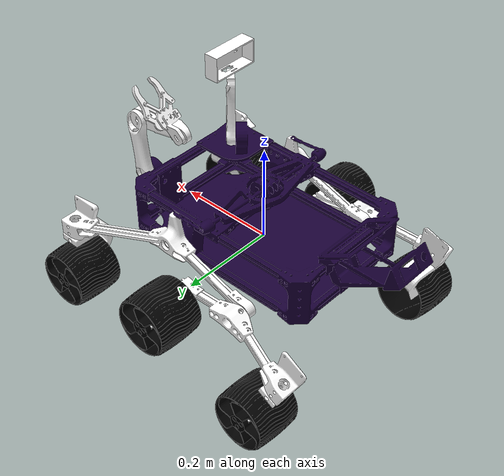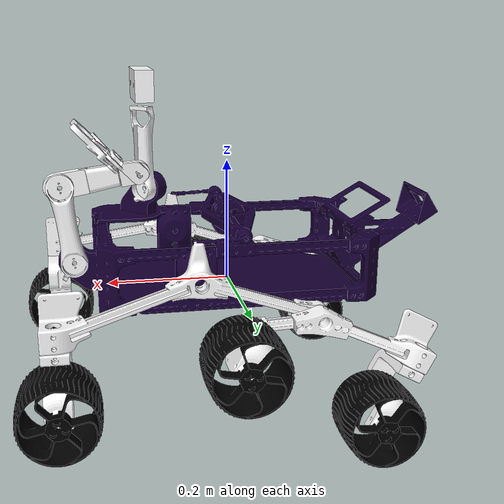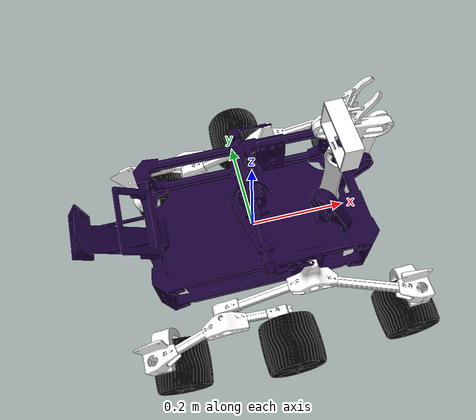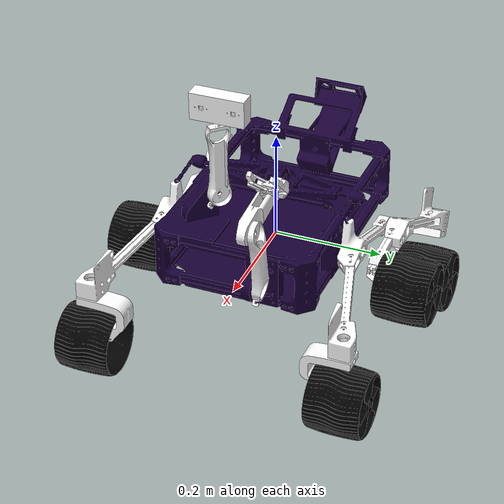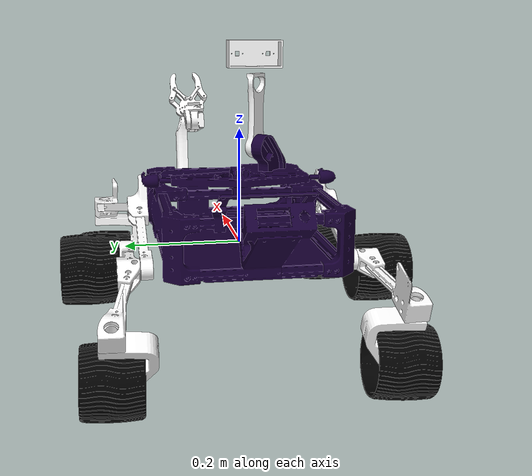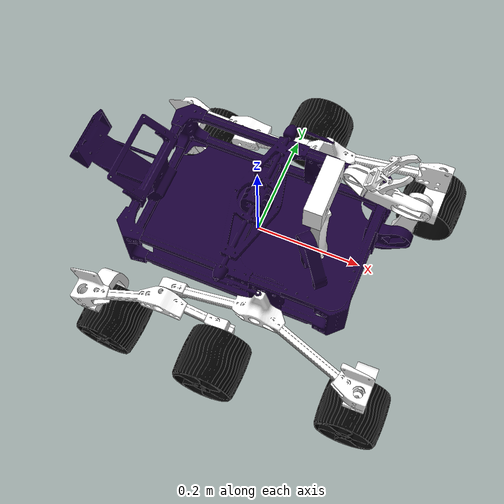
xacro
<?xml version="1.0"?>
<robot name="new_spirit_mars_rover" xmlns:xacro="http://www.ros.org/wiki/xacro">

    <!-- Inertia matrices -->
        <xacro:include filename="$(find new_spirit_mars)/urdf/macros.xacro" />
        <!-- Robot constants and properties -->
        <xacro:include filename="$(find new_spirit_mars)/urdf/new_spirit_mars_rover_properties.xacro" />
        <!-- Gazebo aspects of the robot -->
        <!--xacro:include filename="$(find new_spirit_mars)/urdf/curiosity_mars_rover.gazebo" -->
        <!-- Chasis -->
        <xacro:include filename="$(find new_spirit_mars)/urdf/chassis.xacro" />
        <!-- Wheel Groups -->
        <!--xacro:include filename="$(find new_spirit_mars)/urdf/wheel.xacro" -->
        <xacro:include filename="$(find new_spirit_mars)/urdf/left_wheel_group.xacro" />
        <xacro:include filename="$(find new_spirit_mars)/urdf/bogie_left.xacro" />

        <xacro:include filename="$(find new_spirit_mars)/urdf/right_wheel_group.xacro" />
        <xacro:include filename="$(find new_spirit_mars)/urdf/bogie_right.xacro" />
        <!-- Arm -->
        <xacro:include filename="$(find new_spirit_mars)/urdf/arm.xacro" />
        <!-- Sensor Mast -->
        <xacro:include filename="$(find new_spirit_mars)/urdf/mast.xacro" />

        <chassis_body/>
        <left_wheel_tree/>
        <bogie_left/>
        <right_wheel_tree/>
        <bogie_right/>
        <arm/>
        <mast/>

</robot>

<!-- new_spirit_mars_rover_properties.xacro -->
<robot xmlns:xacro="http://www.ros.org/wiki/xacro">

	<!-- Constants -->
	<xacro:property name="PI" value="3.1415926535897931"/>

	<!-- Scaling -->
	<xacro:property name="scale_XYZ" value="1.0"/>

	<!-- Chassis properties -->

	<!-- Wheel Trees -->

        <xacro:property name="suspension_arm_F_L_limit_upper" value="0.1"/>
        <xacro:property name="suspension_arm_F_L_limit_lower" value="-0.3"/>
        <xacro:property name="suspension_arm_B_L_limit_lower" value="-1.0"/>
        <xacro:property name="suspension_arm_B_L_limit_upper" value="1.0"/>

	<xacro:property name="suspension_arm_B2_lower_limit" value="-1.2"/>
	<xacro:property name="suspension_arm_B2_upper_limit" value="0.1"/>

	<xacro:property name="suspension_steer_limit" value="0.6"/>
	<xacro:property name="suspension_steer_effort" value="10000.0"/>
	<xacro:property name="suspension_steer_velocity" value="10.0"/>

	<xacro:property name="suspension_effort" value="10000.0"/>
	<xacro:property name="suspension_speed" value="10.0"/>
	<xacro:property name="suspension_damping" value="0.5"/>
	<xacro:property name="suspension_friction" value="0.5"/>

	<!-- Wheels properties -->
	<xacro:property name="wheelWidth" value="0.39473"/>
	<xacro:property name="wheelRadius" value="0.242647"/>
	<xacro:property name="wheelMass" value="2.07"/>

	<!-- Arm -->

	<xacro:property name="arm_01_limit" value="1.57"/>
	<xacro:property name="arm_02_limit" value="1.57"/>
	<xacro:property name="arm_03_limit" value="1.57"/>
	<xacro:property name="arm_04_limit" value="1.57"/>

	<!-- Mast -->

	<xacro:property name="mast_p_upper_limit" value="1.57"/>
	<xacro:property name="mast_p_lower_limit" value="0.0"/>

	<xacro:property name="mast_cameras_limit" value="1.57"/>

</robot>

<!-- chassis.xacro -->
<robot xmlns:xacro="http://www.ros.org/wiki/xacro">

  <xacro:macro name="chassis_body" params="">
  <link
    name="RoverChassis">
    <inertial>
      <origin
        xyz="0.0093614 -9.9176E-05 0.050783"
        rpy="0 0 0" />
      <mass
        value="2.5513" />
      <inertia
        ixx="0.0059302"
        ixy="-2.3769E-06"
        ixz="8.4014E-05"
        iyy="0.013"
        iyz="-1.4168E-05"
        izz="0.017599" />
    </inertial>
    <visual>
      <origin
        xyz="0 0 0"
        rpy="0 0 0" />
      <geometry>
        <mesh
          filename="package://new_spirit_mars/meshes/RoverChassis.STL" />
      </geometry>
      <material
        name="">
        <color
          rgba="0.094118 0 0.20784 1" />
      </material>
    </visual>
    <collision>
      <origin
        xyz="0 0 0"
        rpy="0 0 0" />
      <geometry>
        <mesh
          filename="package://new_spirit_mars/meshes/RoverChassis.STL" />
      </geometry>
    </collision>
  </link>
  </xacro:macro>

</robot>

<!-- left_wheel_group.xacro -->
<robot xmlns:xacro="http://www.ros.org/wiki/xacro">

  <xacro:macro name="left_wheel_tree" params="">
  <link
    name="RockerL">
    <inertial>
      <origin
        xyz="-0.0500363133009319 -0.0236635466770382 0.0367831875501886"
        rpy="0 0 0" />
      <mass
        value="0.294520052634494" />
      <inertia
        ixx="0.000108352308811494"
        ixy="-1.91059786594333E-06"
        ixz="4.73945831645257E-05"
        iyy="0.000352090572486351"
        iyz="2.00925754836304E-05"
        izz="0.000386214589117905" />
    </inertial>
    <visual>
      <origin
        xyz="0 0 0"
        rpy="0 0 0" />
      <geometry>
        <mesh
          filename="package://new_spirit_mars/meshesL/RockerL.STL" />
      </geometry>
      <material
        name="">
        <color
          rgba="1 1 1 1" />
      </material>
    </visual>
    <collision>
      <origin
        xyz="0 0 0"
        rpy="0 0 0" />
      <geometry>
        <mesh
          filename="package://new_spirit_mars/meshesL/RockerL.STL" />
      </geometry>
    </collision>
  </link>
  <joint
    name="Chassis_RockerL"
    type="revolute">
    <origin
    xyz="0.073 0.1572 0.0527"
    rpy="1.5708 0 -3.1416"
     />
    <parent
      link="RoverChassis" />
    <child
      link="RockerL" />
    <axis
      xyz="0 0 -1" />
      <limit lower="${suspension_arm_F_L_limit_lower}" upper="${suspension_arm_F_L_limit_upper}" effort="${suspension_effort}" velocity="${suspension_speed}"/>
      <joint_properties damping="${suspension_damping}" friction="${suspension_friction}"/>
  </joint>

<transmission name="RockerL">
<type>transmission_interface/SimpleTransmission</type>
<joint name="Chassis_RockerL">
<hardwareInterface>hardware_interface/EffortJointInterface</hardwareInterface>
</joint>
<actuator name="RockerLMotor">
<hardwareInterface>hardware_interface/EffortJointInterface</hardwareInterface>
<mechanicalReduction>1</mechanicalReduction>
</actuator>
</transmission>

  <link
    name="FrontSteeringL">
    <inertial>
      <origin
        xyz="-0.0058419883406795 -0.0200040415156816 -0.0803209162007755"
        rpy="0 0 0" />
      <mass
        value="0.139116397378233" />
      <inertia
        ixx="0.000230782144493303"
        ixy="-2.0426009947672E-05"
        ixz="5.97754214782973E-06"
        iyy="0.000149217638557369"
        iyz="4.84414300316817E-05"
        izz="0.000131981007718246" />
    </inertial>
    <visual>
      <origin
        xyz="0 0 0"
        rpy="0 0 0" />
      <geometry>
        <mesh
          filename="package://new_spirit_mars/meshesL/FrontSteering.STL" />
      </geometry>
      <material
        name="">
        <color
          rgba="1 1 1 1" />
      </material>
    </visual>
    <collision>
      <origin
        xyz="0 0 0"
        rpy="0 0 0" />
      <geometry>
        <mesh
          filename="package://new_spirit_mars/meshesL/FrontSteering.STL" />
      </geometry>
    </collision>
  </link>
  <joint
    name="RockerL_FSL"
    type="revolute">
    <origin
      xyz="-0.21167 -0.028941 0.076007"
      rpy="1.5674 -0.2248 -3.1396" />
    <parent
      link="RockerL" />
    <child
      link="FrontSteeringL" />
    <axis
      xyz="0 0 -1" />
    <limit
      lower="0"
      upper="0"
      effort="0"
      velocity="0" />
  </joint>
  <link
    name="WheelFSL">
    <inertial>
      <origin
        xyz="1.97379102021E-07 -4.49512316258449E-09 -0.0403200720130668"
        rpy="0 0 0" />
      <mass
        value="0.114678000010855" />
      <inertia
        ixx="0.000256329302193645"
        ixy="6.99468861961085E-10"
        ixz="5.08009604930152E-10"
        iyy="0.000256337022994517"
        iyz="-5.0054397720179E-11"
        izz="0.000322269999383538" />
    </inertial>
    <visual>
      <origin
        xyz="0 0 0"
        rpy="0 0 0" />
      <geometry>
        <mesh
          filename="package://new_spirit_mars/meshesL/WheelFS.STL" />
      </geometry>
      <material
        name="">
        <color
          rgba="0 0 0 1" />
      </material>
    </visual>
    <collision>
      <origin
        xyz="0 0 0"
        rpy="0 0 0" />
      <geometry>
        <mesh
          filename="package://new_spirit_mars/meshesL/WheelFS.STL" />
      </geometry>
    </collision>
  </link>
  <joint
    name="FS_WheelFSL"
    type="continuous">
    <origin
      xyz="0.011656 0.048622 -0.1312"
      rpy="-1.5708 -1.3545 -0.23615" />
    <parent
      link="FrontSteeringL" />
    <child
      link="WheelFSL" />
    <axis
      xyz="0 0 -1" />
  </joint>

  </xacro:macro>

</robot>

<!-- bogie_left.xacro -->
<robot xmlns:xacro="http://www.ros.org/wiki/xacro">

  <xacro:macro name="bogie_left" params="">

<link
  name="Bogie_L">
  <inertial>
    <origin
      xyz="0.017291 -0.0084659 0.039187"
      rpy="0 0 0" />
    <mass
      value="0.26039" />
    <inertia
      ixx="0.00020918"
      ixy="-3.9151E-05"
      ixz="-2.8465E-05"
      iyy="0.00015289"
      iyz="7.486E-06"
      izz="0.0001933" />
  </inertial>
  <visual>
    <origin
      xyz="0 0 0"
      rpy="0 0 0" />
    <geometry>
      <mesh
        filename="package://new_spirit_mars/meshes/Bogie_L.STL" />
    </geometry>
    <material
      name="">
      <color
        rgba="1 1 1 1" />
    </material>
  </visual>
  <collision>
    <origin
      xyz="0 0 0"
      rpy="0 0 0" />
    <geometry>
      <mesh
        filename="package://new_spirit_mars/meshes/Bogie_L.STL" />
    </geometry>
  </collision>
</link>
<joint
  name="RockerL_BogieL"
  type="revolute">
  <origin
    xyz="0.181 -0.062 0.0227"
    rpy="0 0 -1.2" />
  <parent
    link="RockerL" />
  <child
    link="Bogie_L" />
  <axis
    xyz="0 0 -1" />
    <limit lower="${suspension_arm_B_L_limit_lower}" upper="${suspension_arm_B_L_limit_upper}" effort="${suspension_effort}" velocity="${suspension_speed}"/>
    <joint_properties damping="${suspension_damping}" friction="${suspension_friction}"/>
</joint>

<transmission name="BogieL">
<type>transmission_interface/SimpleTransmission</type>
<joint name="RockerL_BogieL">
<hardwareInterface>hardware_interface/EffortJointInterface</hardwareInterface>
</joint>
<actuator name="BogieLMotor">
<hardwareInterface>hardware_interface/EffortJointInterface</hardwareInterface>
<mechanicalReduction>1</mechanicalReduction>
</actuator>
</transmission>

<link
  name="MidWheelL">
  <inertial>
    <origin
      xyz="2.3122E-07 2.7072E-08 -0.04032"
      rpy="0 0 0" />
    <mass
      value="0.11468" />
    <inertia
      ixx="0.00025633"
      ixy="5.1109E-10"
      ixz="9.4466E-10"
      iyy="0.00025634"
      iyz="-2.8319E-10"
      izz="0.00032227" />
  </inertial>
  <visual>
    <origin
      xyz="0 0 0"
      rpy="0 0 0" />
    <geometry>
      <mesh
        filename="package://new_spirit_mars/meshes/MidWheelL.STL" />
    </geometry>
    <material
      name="">
      <color
        rgba="0 0 0 1" />
    </material>
  </visual>
  <collision>
    <origin
      xyz="0 0 0"
      rpy="0 0 0" />
    <geometry>
      <mesh
        filename="package://new_spirit_mars/meshes/MidWheelL.STL" />
    </geometry>
  </collision>
</link>
<joint
  name="BogieL_MWL"
  type="continuous">
  <origin
    xyz="-0.014326 -0.13425 0.1309"
    rpy="0 0 1.5375" />
  <parent
    link="Bogie_L" />
  <child
    link="MidWheelL" />
  <axis
    xyz="0 0 -1" />
</joint>
<link
  name="RearSteeringL">
  <inertial>
    <origin
      xyz="-0.021141 0.0035523 -0.075591"
      rpy="0 0 0" />
    <mass
      value="0.12474" />
    <inertia
      ixx="0.0001394"
      ixy="1.0278E-05"
      ixz="4.8811E-05"
      iyy="0.00023016"
      iyz="-9.2341E-08"
      izz="0.00012967" />
  </inertial>
  <visual>
    <origin
      xyz="0 0 0"
      rpy="0 0 0" />
    <geometry>
      <mesh
        filename="package://new_spirit_mars/meshes/RearSteeringL.STL" />
    </geometry>
    <material
      name="">
      <color
        rgba="1 1 1 1" />
    </material>
  </visual>
  <collision>
    <origin
      xyz="0 0 0"
      rpy="0 0 0" />
    <geometry>
      <mesh
        filename="package://new_spirit_mars/meshes/RearSteeringL.STL" />
    </geometry>
  </collision>
</link>
<joint
  name="BogieL_RSL"
  type="revolute">
  <origin xyz="0.0888355536938871 0.122345515642702 0.0503310870072487"
          rpy="-1.67683384925633 -1.48268572159206 0.811299555949701"/>
  <parent
    link="Bogie_L" />
  <child
    link="RearSteeringL" />
  <axis
    xyz="0 0 -1" />
  <limit
    lower="0"
    upper="0"
    effort="0"
    velocity="0" />
</joint>
<link
  name="WheelRSL">
  <inertial>
    <origin
      xyz="2.0319E-07 2.6485E-10 -0.04032"
      rpy="0 0 0" />
    <mass
      value="0.11468" />
    <inertia
      ixx="0.00025633"
      ixy="-3.007E-09"
      ixz="5.632E-10"
      iyy="0.00025633"
      iyz="-4.9834E-09"
      izz="0.00032227" />
  </inertial>
  <visual>
    <origin
      xyz="0 0 0"
      rpy="0 0 0" />
    <geometry>
      <mesh
        filename="package://new_spirit_mars/meshes/WheelRSL.STL" />
    </geometry>
    <material
      name="">
      <color
        rgba="0 0 0 1" />
    </material>
  </visual>
  <collision>
    <origin
      xyz="0 0 0"
      rpy="0 0 0" />
    <geometry>
      <mesh
        filename="package://new_spirit_mars/meshes/WheelRSL.STL" />
    </geometry>
  </collision>
</link>
<joint
  name="RSL_WheelRSL"
  type="continuous">
  <origin
    xyz="0.049691 -0.0055546 -0.13103"
    rpy="1.5708 1.1781 1.4555" />
  <parent
    link="RearSteeringL" />
  <child
    link="WheelRSL" />
  <axis
    xyz="0 0 -1" />
</joint>
</xacro:macro>
</robot>

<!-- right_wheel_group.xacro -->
<robot xmlns:xacro="http://www.ros.org/wiki/xacro">

  <xacro:macro name="right_wheel_tree" params="">
  <link
    name="RockerR">
    <inertial>
      <origin
        xyz="-0.050032 0.023664 0.036785"
        rpy="0 0 0" />
      <mass
        value="0.29452" />
      <inertia
        ixx="0.00010834"
        ixy="1.9104E-06"
        ixz="4.7402E-05"
        iyy="0.00035209"
        iyz="-2.0093E-05"
        izz="0.00038622" />
    </inertial>
    <visual>
      <origin
        xyz="0 0 0"
        rpy="0 0 0" />
      <geometry>
        <mesh
          filename="package://new_spirit_mars/meshesR/RockerR.STL" />
      </geometry>
      <material
        name="">
        <color
          rgba="1 1 1 1" />
      </material>
    </visual>
    <collision>
      <origin
        xyz="0 0 0"
        rpy="0 0 0" />
      <geometry>
        <mesh
          filename="package://new_spirit_mars/meshesR/RockerR.STL" />
      </geometry>
    </collision>
  </link>
  <joint
    name="Chassis_RockerR"
    type="revolute">
    <origin
    xyz="0.073 -0.1572 0.0527"
    rpy="-1.5708 0 -3.1416"/>
    <parent
      link="RoverChassis" />
    <child
      link="RockerR" />
    <axis
      xyz="0 0 -1" />
      <limit lower="${suspension_arm_F_L_limit_lower}" upper="${suspension_arm_F_L_limit_upper}" effort="${suspension_effort}" velocity="${suspension_speed}"/>
      <joint_properties damping="${suspension_damping}" friction="${suspension_friction}"/>
  </joint>

<transmission name="RockerR">
<type>transmission_interface/SimpleTransmission</type>
<joint name="Chassis_RockerR">
<hardwareInterface>hardware_interface/EffortJointInterface</hardwareInterface>
</joint>
<actuator name="RockerrMotor">
<hardwareInterface>hardware_interface/EffortJointInterface</hardwareInterface>
<mechanicalReduction>1</mechanicalReduction>
</actuator>
</transmission>

  <link
    name="FrontSteering">
    <inertial>
      <origin
        xyz="-0.020342 -0.0045326 -0.080302"
        rpy="0 0 0" />
      <mass
        value="0.13911" />
      <inertia
        ixx="0.00014692"
        ixy="-1.4997E-05"
        ixz="4.8723E-05"
        iyy="0.00023307"
        iyz="2.8394E-06"
        izz="0.00013198" />
    </inertial>
    <visual>
      <origin
        xyz="0 0 0"
        rpy="0 0 0" />
      <geometry>
        <mesh
          filename="package://new_spirit_mars/meshesR/FrontSteering.STL" />
      </geometry>
      <material
        name="">
        <color
          rgba="1 1 1 1" />
      </material>
    </visual>
    <collision>
      <origin
        xyz="0 0 0"
        rpy="0 0 0" />
      <geometry>
        <mesh
          filename="package://new_spirit_mars/meshesR/FrontSteering.STL" />
      </geometry>
    </collision>
  </link>
  <joint
    name="RockerR_FS"
    type="revolute">
    <origin
      xyz="-0.211672796799912 0.0289412092539663 0.0760067485212018"
      rpy="-1.56739532433129 -1.726067171352006 3.13959200058634" />
    <parent
      link="RockerR" />
    <child
      link="FrontSteering" />
    <axis
      xyz="0 0 1" />
    <limit
      lower="0"
      upper="0"
      effort="0"
      velocity="0" />
  </joint>
  <link
    name="WheelFS">
    <inertial>
      <origin
        xyz="3.0588E-07 1.6045E-07 -0.040318"
        rpy="0 0 0" />
      <mass
        value="0.11466" />
      <inertia
        ixx="0.0002563"
        ixy="4.1252E-09"
        ixz="-2.5724E-09"
        iyy="0.00025629"
        iyz="3.789E-09"
        izz="0.00032223" />
    </inertial>
    <visual>
      <origin
        xyz="0 0 0"
        rpy="0 0 0" />
      <geometry>
        <mesh
          filename="package://new_spirit_mars/meshesR/WheelFS.STL" />
      </geometry>
      <material
        name="">
        <color
          rgba="0 0 0 1" />
      </material>
    </visual>
    <collision>
      <origin
        xyz="0 0 0"
        rpy="0 0 0" />
      <geometry>
        <mesh
          filename="package://new_spirit_mars/meshesR/WheelFS.STL" />
      </geometry>
    </collision>
  </link>
  <joint
    name="FS_WheelFS"
    type="continuous">
    <origin
      xyz="0.0492346860928115 0.00871668625171746 -0.131071176761833"
      rpy="1.5707963267949 0.76880806858163 1.74228607742927" />
    <parent
      link="FrontSteering" />
    <child
      link="WheelFS" />
    <axis
      xyz="0 0 -1" />
  </joint>

</xacro:macro>
</robot>

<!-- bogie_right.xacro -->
<robot xmlns:xacro="http://www.ros.org/wiki/xacro">

  <xacro:macro name="bogie_right" params="">
  <link
    name="BogieR">
    <inertial>
      <origin
        xyz="0.0012451 0.019213 0.059188"
        rpy="0 0 0" />
      <mass
        value="0.2604" />
      <inertia
        ixx="0.00013302"
        ixy="4.4666E-06"
        ixz="-7.651E-06"
        iyy="0.00022904"
        iyz="-2.842E-05"
        izz="0.0001933" />
    </inertial>
    <visual>
      <origin
        xyz="0 0 0"
        rpy="0 0 0" />
      <geometry>
        <mesh
          filename="package://new_spirit_mars/meshes/BogieR.STL" />
      </geometry>
      <material
        name="">
        <color
          rgba="1 1 1 1" />
      </material>
    </visual>
    <collision>
      <origin
        xyz="0 0 0"
        rpy="0 0 0" />
      <geometry>
        <mesh
          filename="package://new_spirit_mars/meshes/BogieR.STL" />
      </geometry>
    </collision>
  </link>
  <joint
      name="RockerR_BogieR"
      type="revolute">
      <origin
        xyz="0.180999685953231 0.061999892425969 0.00269999999999999"
        rpy="0 0 0" />
      <parent
        link="RockerR" />
      <child
        link="BogieR" />
      <axis
        xyz="0 0 -1"
        />
        <limit lower="${suspension_arm_B_L_limit_lower}" upper="${suspension_arm_B_L_limit_upper}" effort="${suspension_effort}" velocity="${suspension_speed}"/>
        <joint_properties damping="${suspension_damping}" friction="${suspension_friction}"/>
    </joint>

<transmission name="BogieR">
<type>transmission_interface/SimpleTransmission</type>
<joint name="RockerR_BogieR">
<hardwareInterface>hardware_interface/EffortJointInterface</hardwareInterface>
</joint>
<actuator name="BogieRMotor">
<hardwareInterface>hardware_interface/EffortJointInterface</hardwareInterface>
<mechanicalReduction>1</mechanicalReduction>
</actuator>
</transmission>

  <link
    name="MidWheelR">
    <inertial>
      <origin
        xyz="3.1987E-07 1.6968E-07 -0.040318"
        rpy="0 0 0" />
      <mass
        value="0.11466" />
      <inertia
        ixx="0.0002563"
        ixy="6.731E-09"
        ixz="-7.6234E-10"
        iyy="0.0002563"
        iyz="9.3179E-10"
        izz="0.00032223" />
    </inertial>
    <visual>
      <origin
        xyz="0 0 0"
        rpy="0 0 0" />
      <geometry>
        <mesh
          filename="package://new_spirit_mars/meshes/MidWheelR.STL" />
      </geometry>
      <material
        name="">
        <color
          rgba="0 0 0 1" />
      </material>
    </visual>
    <collision>
      <origin
        xyz="0 0 0"
        rpy="0 0 0" />
      <geometry>
        <mesh
          filename="package://new_spirit_mars/meshes/MidWheelR.STL" />
      </geometry>
    </collision>
  </link>
  <joint
    name="BogieR_MWR"
    type="continuous">
    <origin
      xyz="-0.12382 0.054495 0.1494"
      rpy="0 0 0.61828" />
    <parent
      link="BogieR" />
    <child
      link="MidWheelR" />
    <axis
      xyz="0 0 -1" />
  </joint>
  <link
    name="RearSteeringR">
    <inertial>
      <origin
        xyz="0.013524 0.016635 -0.075591"
        rpy="0 0 0" />
      <mass
        value="0.12473" />
      <inertia
        ixx="0.00018921"
        ixy="-4.6317E-05"
        ixz="-3.6575E-05"
        iyy="0.00018034"
        iyz="-3.2316E-05"
        izz="0.00012966" />
    </inertial>
    <visual>
      <origin
        xyz="0 0 0"
        rpy="0 0 0" />
      <geometry>
        <mesh
          filename="package://new_spirit_mars/meshes/RearSteeringR.STL" />
      </geometry>
      <material
        name="">
        <color
          rgba="1 1 1 1" />
      </material>
    </visual>
    <collision>
      <origin
        xyz="0 0 0"
        rpy="0 0 0" />
      <geometry>
        <mesh
          filename="package://new_spirit_mars/meshes/RearSteeringR.STL" />
      </geometry>
    </collision>
  </link>
  <joint
      name="BogieR_RSR"
      type="revolute">
      <origin
        xyz="0.15073 0.017246 0.070331"
        rpy="1.6092 2.47694 0.35607" />
      <parent
        link="BogieR" />
      <child
        link="RearSteeringR" />
      <axis
        xyz="0 0 -1" />

      <limit
        lower="0"
        upper="0"
        effort="0"
        velocity="0" />
    </joint>
  <link
    name="WheelRSR">
    <inertial>
      <origin
        xyz="3.5294E-07 1.4496E-07 -0.040318"
        rpy="0 0 0" />
      <mass
        value="0.11466" />
      <inertia
        ixx="0.0002563"
        ixy="-8.238E-10"
        ixz="-1.2711E-09"
        iyy="0.0002563"
        iyz="3.7072E-10"
        izz="0.00032223" />
    </inertial>
    <visual>
      <origin
        xyz="0 0 0"
        rpy="0 0 0" />
      <geometry>
        <mesh
          filename="package://new_spirit_mars/meshes/WheelRSR.STL" />
      </geometry>
      <material
        name="">
        <color
          rgba="0 0 0 1" />
      </material>
    </visual>
    <collision>
      <origin
        xyz="0 0 0"
        rpy="0 0 0" />
      <geometry>
        <mesh
          filename="package://new_spirit_mars/meshes/WheelRSR.STL" />
      </geometry>
    </collision>
  </link>
  <joint
    name="RSR_WheelRSR"
    type="continuous">
    <origin
      xyz="-0.032911 -0.036303 -0.13085"
      rpy="-1.5708 0.83047 2.4078" />
    <parent
      link="RearSteeringR" />
    <child
      link="WheelRSR" />
    <axis
      xyz="0 0 -1" />
  </joint>
  </xacro:macro>
  </robot>

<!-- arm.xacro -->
<robot xmlns:xacro="http://www.ros.org/wiki/xacro">

  <xacro:macro name="arm" params="">
  <link
    name="Arm">
    <inertial>
      <origin
        xyz="-0.00013011 0.057834 0.0017688"
        rpy="0 0 0" />
      <mass
        value="0.065681" />
      <inertia
        ixx="0.00010918"
        ixy="-1.6866E-09"
        ixz="2.4327E-10"
        iyy="9.2922E-06"
        iyz="2.444E-07"
        izz="0.00011408" />
    </inertial>
    <visual>
      <origin
        xyz="0 0 0"
        rpy="0 0 0" />
      <geometry>
        <mesh
          filename="package://new_spirit_mars/meshes/Arm.STL" />
      </geometry>
      <material
        name="">
        <color
          rgba="1 1 1 1" />
      </material>
    </visual>
    <collision>
      <origin
        xyz="0 0 0"
        rpy="0 0 0" />
      <geometry>
        <mesh
          filename="package://new_spirit_mars/meshes/Arm.STL" />
      </geometry>
    </collision>
  </link>
  <joint
    name="Chassis_Arm"
    type="revolute">
    <origin
      xyz="0.253051748698285 0.0704529943574704 0.0609913956856037"
      rpy="1.5707963267949 -0.130632744206875 -3.14159265358979" />
    <parent
      link="RoverChassis" />
    <child
      link="Arm" />
    <axis
      xyz="0 0 1" />
    <limit
      lower="0"
      upper="0"
      effort="0"
      velocity="0" />
  </joint>
  <link
    name="Arm2">
    <inertial>
      <origin
        xyz="0.0014503 0.03926 0.016609"
        rpy="0 0 0" />
      <mass
        value="0.051274" />
      <inertia
        ixx="5.5647E-05"
        ixy="-1.4498E-06"
        ixz="-8.8093E-09"
        iyy="9.5179E-06"
        iyz="-2.9315E-07"
        izz="5.9312E-05" />
    </inertial>
    <visual>
      <origin
        xyz="0 0 0"
        rpy="0 0 0" />
      <geometry>
        <mesh
          filename="package://new_spirit_mars/meshes/Arm2.STL" />
      </geometry>
      <material
        name="">
        <color
          rgba="1 1 1 1" />
      </material>
    </visual>
    <collision>
      <origin
        xyz="0 0 0"
        rpy="0 0 0" />
      <geometry>
        <mesh
          filename="package://new_spirit_mars/meshes/Arm2.STL" />
      </geometry>
    </collision>
  </link>
  <joint
    name="Arm_Arm2"
    type="revolute">
    <origin
      xyz="0 0.11924 0"
      rpy="-3.1416 0 1.5708" />
    <parent
      link="Arm" />
    <child
      link="Arm2" />
    <axis
      xyz="0 0 -1" />
    <limit
      lower="0"
      upper="0"
      effort="0"
      velocity="0" />
  </joint>
  <link
    name="Arm3">
    <inertial>
      <origin
        xyz="0.0050459 -0.0052647 -0.017841"
        rpy="0 0 0" />
      <mass
        value="0.016829" />
      <inertia
        ixx="3.9904E-06"
        ixy="-4.0705E-09"
        ixz="-1.1789E-08"
        iyy="5.1228E-06"
        iyz="-5.8731E-07"
        izz="2.6647E-06" />
    </inertial>
    <visual>
      <origin
        xyz="0 0 0"
        rpy="0 0 0" />
      <geometry>
        <mesh
          filename="package://new_spirit_mars/meshes/Arm3.STL" />
      </geometry>
      <material
        name="">
        <color
          rgba="1 1 1 1" />
      </material>
    </visual>
    <collision>
      <origin
        xyz="0 0 0"
        rpy="0 0 0" />
      <geometry>
        <mesh
          filename="package://new_spirit_mars/meshes/Arm3.STL" />
      </geometry>
    </collision>
  </link>
  <joint
    name="Arm2_Arm3"
    type="revolute">
    <origin
      xyz="-0.00231376659955707 0.0917099175886816 0.0167"
      rpy="1.5707963267949 0.0495995429747262 -0.0298514149555396" />
    <parent
      link="Arm2" />
    <child
      link="Arm3" />
    <axis
      xyz="0 0 1" />
    <limit
      lower="0"
      upper="0"
      effort="0"
      velocity="0" />
  </joint>
  <link
    name="EFE">
    <inertial>
      <origin
        xyz="0.035646 -0.03828 0.00179"
        rpy="0 0 0" />
      <mass
        value="0.035617" />
      <inertia
        ixx="7.9239E-06"
        ixy="5.0355E-06"
        ixz="-9.5166E-07"
        iyy="8.5973E-06"
        iyz="1.1051E-06"
        izz="1.1584E-05" />
    </inertial>
    <visual>
      <origin
        xyz="0 0 0"
        rpy="0 0 0" />
      <geometry>
        <mesh
          filename="package://new_spirit_mars/meshes/EFE.STL" />
      </geometry>
      <material
        name="">
        <color
          rgba="1 1 1 1" />
      </material>
    </visual>
    <collision>
      <origin
        xyz="0 0 0"
        rpy="0 0 0" />
      <geometry>
        <mesh
          filename="package://new_spirit_mars/meshes/EFE.STL" />
      </geometry>
    </collision>
  </link>
  <joint
    name="Arm3_EFE"
    type="revolute">
    <origin
      xyz="0.005 -0.014 -0.0279999999985077"
      rpy="-1.5707963267949 0 0" />
    <parent
      link="Arm3" />
    <child
      link="EFE" />
    <axis
      xyz="0 0 -1" />
    <limit
      lower="0"
      upper="0"
      effort="0"
      velocity="0" />
  </joint>
  </xacro:macro>
  </robot>

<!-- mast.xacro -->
<robot xmlns:xacro="http://www.ros.org/wiki/xacro">

  <xacro:macro name="mast" params="">

<link
  name="MastArm">
  <inertial>
    <origin
      xyz="-0.00021473 0.051397 -0.00073642"
      rpy="0 0 0" />
    <mass
      value="0.040089" />
    <inertia
      ixx="8.1919E-05"
      ixy="1.6871E-09"
      ixz="5.5106E-10"
      iyy="5.8703E-06"
      iyz="-5.4206E-07"
      izz="8.6546E-05" />
  </inertial>
  <visual>
    <origin
      xyz="0 0 0"
      rpy="0 0 0" />
    <geometry>
      <mesh
        filename="package://new_spirit_mars/meshes/MastArm.STL" />
    </geometry>
    <material
      name="">
      <color
        rgba="1 1 1 1" />
    </material>
  </visual>
  <collision>
    <origin
      xyz="0 0 0"
      rpy="0 0 0" />
    <geometry>
      <mesh
        filename="package://new_spirit_mars/meshes/MastArm.STL" />
    </geometry>
  </collision>
</link>
<joint
  name="RoverChassis_Mast"
  type="revolute">
  <origin
    xyz="0.13149 -0.053006 0.14751"
    rpy="1.5708 -0.0056094 2.3562" />
  <parent
    link="RoverChassis" />
  <child
    link="MastArm" />
  <axis
    xyz="0 0 -1" />
  <limit
    lower="0"
    upper="0"
    effort="0"
    velocity="0" />
</joint>
<link
  name="MastHead">
  <inertial>
    <origin
      xyz="-0.0013429 0.00089648 -0.022625"
      rpy="0 0 0" />
    <mass
      value="0.037642" />
    <inertia
      ixx="5.6108E-05"
      ixy="-1.2333E-09"
      ixz="7.2038E-08"
      iyy="1.6403E-05"
      iyz="8.3386E-08"
      izz="4.6655E-05" />
  </inertial>
  <visual>
    <origin
      xyz="0 0 0"
      rpy="0 0 0" />
    <geometry>
      <mesh
        filename="package://new_spirit_mars/meshes/MastHead.STL" />
    </geometry>
    <material
      name="">
      <color
        rgba="1 1 1 1" />
    </material>
  </visual>
  <collision>
    <origin
      xyz="0 0 0"
      rpy="0 0 0" />
    <geometry>
      <mesh
        filename="package://new_spirit_mars/meshes/MastHead.STL" />
    </geometry>
  </collision>
</link>
<joint
  name="MastArm_MastHead"
  type="revolute">
  <origin
    xyz="0.00029854 0.15045 0.004"
    rpy="1.5708 0.79479 0" />
  <parent
    link="MastArm" />
  <child
    link="MastHead" />
  <axis
    xyz="0 0 1" />
  <limit
    lower="0"
    upper="0"
    effort="0"
    velocity="0" />
</joint>
</xacro:macro>

</robot>
